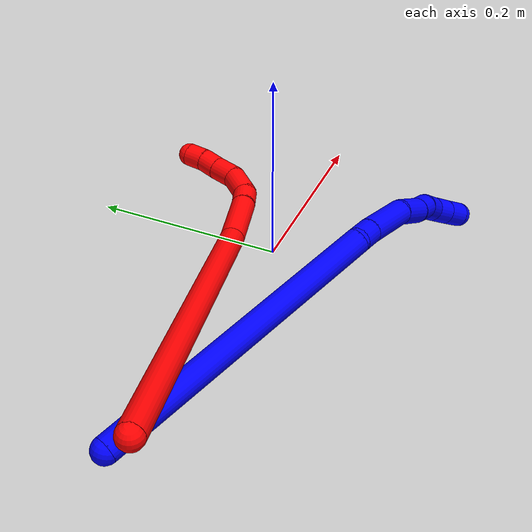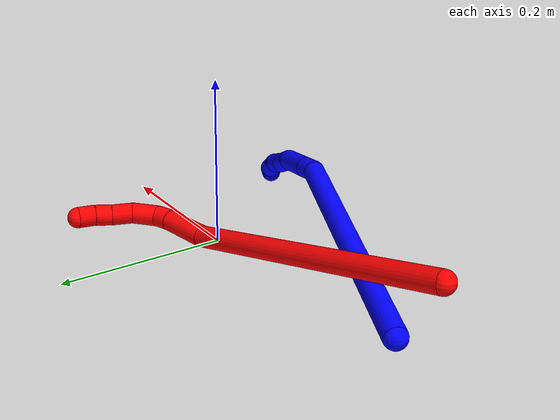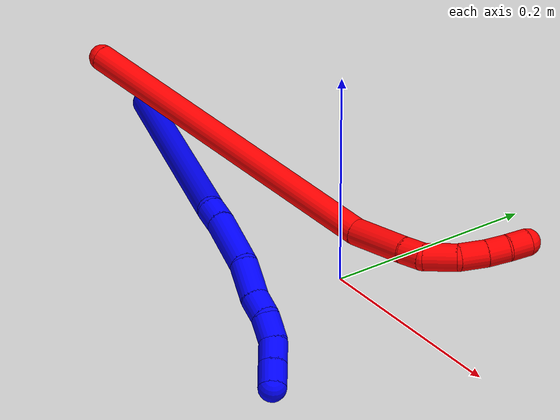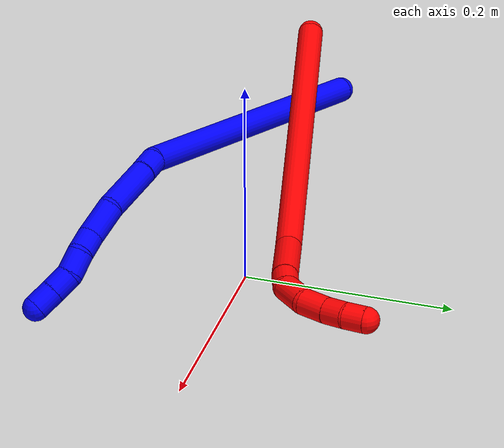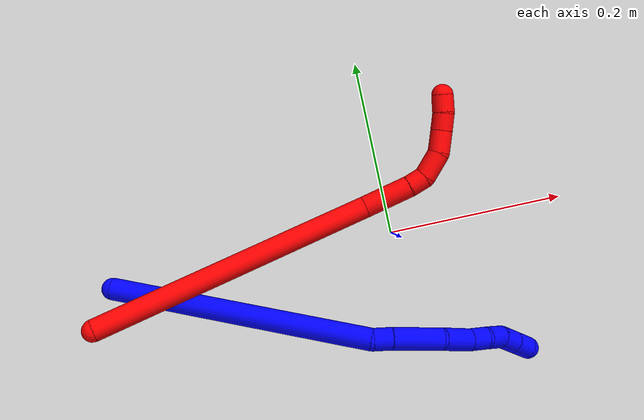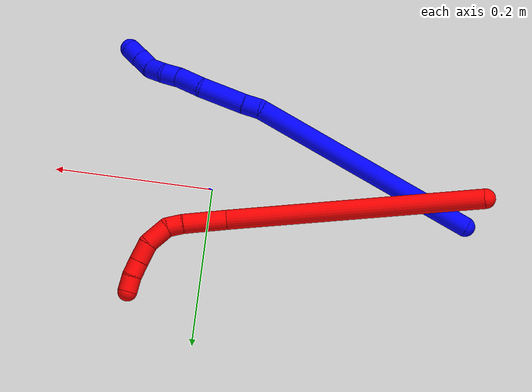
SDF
<sdf version="1.7">
 <world name="default">
  <plugin name="TubeGeneratorPlugin" filename="libtube_generator_plugin.so"/>
  <model name="photoneo_s_sensor">
   <static>1</static>
   <pose>0 0 2 1.57079 1.57079 3.14159</pose>
   <link name="link">
    <inertial><mass>0.1</mass></inertial>
    <sensor name="sensor" type="depth">
     <update_rate>30</update_rate>
     <camera>
      <horizontal_fov>1.22</horizontal_fov>
      <image><width>1920</width><height>1200</height><format>B8G8R8</format></image>
      <clip><near>0.1</near><far>4</far></clip>
      <depth_camera><output>points</output></depth_camera>
     </camera>
     <plugin name="camera_plugin" filename="libgazebo_ros_depth_camera.so">
      <baseline>0.2</baseline>
      <alwaysOn>1</alwaysOn>
      <updateRate>0.0</updateRate>
      <cameraName>camera_ir</cameraName>
      <imageTopicName>/camera/color/image_raw</imageTopicName>
      <cameraInfoTopicName>/camera/color/camera_info</cameraInfoTopicName>
      <depthImageTopicName>/camera/depth/image_raw</depthImageTopicName>
      <depthImageCameraInfoTopicName>/camera/depth/camera_info</depthImageCameraInfoTopicName>
      <pointCloudTopicName>/camera/depth/points</pointCloudTopicName>
      <frameName>fr_optical</frameName>
      <pointCloudCutoff>0.1</pointCloudCutoff>
      <pointCloudCutoffMax>2.0</pointCloudCutoffMax>
      <distortionK1>0</distortionK1>
      <distortionK2>0</distortionK2>
      <distortionK3>0</distortionK3>
      <distortionT1>0</distortionT1>
      <distortionT2>0</distortionT2>
      <CxPrime>0</CxPrime>
      <Cx>0</Cx>
      <Cy>0</Cy>
      <focalLength>0</focalLength>
      <hackBaseline>0</hackBaseline>
     </plugin>
    </sensor>
   </link>
  </model>
  <gravity>0 0 -9.8</gravity>
  <magnetic_field>6e-06 2.3e-05 -4.2e-05</magnetic_field>
  <atmosphere type="adiabatic"/>
  <physics name="default_physics" default="0" type="ode">
   <max_step_size>0.003</max_step_size>
   <real_time_factor>1</real_time_factor>
   <real_time_update_rate>1000</real_time_update_rate>
   <max_contacts>10000</max_contacts>
   <ode>
    <solver>
     <type>quick</type>
     <iters>100</iters>
     <sor>1.3</sor>
     <use_dynamic_moi_rescaling>0</use_dynamic_moi_rescaling>
    </solver>
    <constraints>
     <contact_max_correcting_vel>0</contact_max_correcting_vel>
     <contact_surface_layer>0.001</contact_surface_layer>
     <cfm>0</cfm>
     <erp>0.2</erp>
    </constraints>
   </ode>
  </physics>
  <scene><ambient>0.4 0.4 0.4 1</ambient><background>0.7 0.7 0.7 1</background><shadows>0</shadows></scene>
  <audio><device>default</device></audio>
  <spherical_coordinates>
   <surface_model>EARTH_WGS84</surface_model>
   <latitude_deg>0</latitude_deg>
   <longitude_deg>0</longitude_deg>
   <elevation>0</elevation>
   <heading_deg>0</heading_deg>
  </spherical_coordinates>
  <model name="bin">
   <static>1</static>
   <link name="bottom">
    <collision name="collision-bottom">
     <pose>0 0 -0.01 0 -0 0</pose>
     <geometry><box><size>0.8 0.6 0.02</size></box></geometry>
     <surface>
      <friction><ode><mu>100</mu><mu2>100</mu2></ode></friction>
      <contact><collide_bitmask>65535</collide_bitmask></contact>
     </surface>
    </collision>
   </link>
   <link name="west_wall">
    <collision name="collision-west_wall">
     <pose>-0.41 0 0.1 0 -0 0</pose>
     <geometry><box><size>0.02 0.6 0.2</size></box></geometry>
     <surface>
      <friction><ode><mu>100</mu><mu2>100</mu2></ode></friction>
      <contact><collide_bitmask>65535</collide_bitmask></contact>
     </surface>
    </collision>
   </link>
   <link name="east_wall">
    <collision name="collision-east_wall">
     <pose>0.41 0 0.1 0 -0 0</pose>
     <geometry><box><size>0.02 0.6 0.2</size></box></geometry>
     <surface>
      <friction><ode><mu>100</mu><mu2>100</mu2></ode></friction>
      <contact><collide_bitmask>65535</collide_bitmask></contact>
     </surface>
    </collision>
   </link>
   <link name="south_wall">
    <collision name="collision-south_wall">
     <pose>0 -0.31 0.1 0 -0 0</pose>
     <geometry><box><size>0.8 0.02 0.2</size></box></geometry>
     <surface>
      <friction><ode><mu>100</mu><mu2>100</mu2></ode></friction>
      <contact><collide_bitmask>65535</collide_bitmask></contact>
     </surface>
    </collision>
   </link>
   <link name="north_wall">
    <collision name="collision-north_wall">
     <pose>0 0.31 0.1 0 -0 0</pose>
     <geometry><box><size>0.8 0.02 0.2</size></box></geometry>
     <surface>
      <friction><ode><mu>100</mu><mu2>100</mu2></ode></friction>
      <contact><collide_bitmask>65535</collide_bitmask></contact>
     </surface>
    </collision>
   </link>
  </model>
  <model name="1">
   <static>0</static>
   <link name="1">
    <collision name="collision-cylinder-e_1_1_4">
     <pose>0.121428 -0.050525 0.070552 0.621474 0.950313 0.327476</pose>
     <geometry><cylinder><radius>0.0125</radius><length>0.298496</length></cylinder></geometry>
     <surface>
      <friction><ode><mu>1.16</mu><mu2>1.16</mu2><slip1>0</slip1><slip2>0</slip2></ode></friction>
      <contact><ode><kp>1e+06</kp><kd>1</kd><max_vel>0</max_vel><min_depth>0.001</min_depth></ode></contact>
     </surface>
    </collision>
    <visual name="visual-cylinder-e_1_1_4">
     <pose>0.121428 -0.050525 0.070552 0.621474 0.950313 0.327476</pose>
     <geometry><cylinder><radius>0.0125</radius><length>0.298496</length></cylinder></geometry>
     <material><ambient>0 0 1 1</ambient></material>
    </visual>
    <collision name="collision-cylinder-e_2_4_5">
     <pose>0.253142 -0.102946 0.143069 0.767658 1.31121 0.602312</pose>
     <geometry><cylinder><radius>0.0125</radius><length>0.021285</length></cylinder></geometry>
     <surface>
      <friction><ode><mu>1.16</mu><mu2>1.16</mu2><slip1>0</slip1><slip2>0</slip2></ode></friction>
      <contact><ode><kp>1e+06</kp><kd>1</kd><max_vel>0</max_vel><min_depth>0.001</min_depth></ode></contact>
     </surface>
    </collision>
    <visual name="visual-cylinder-e_2_4_5">
     <pose>0.253142 -0.102946 0.143069 0.767658 1.31121 0.602312</pose>
     <geometry><cylinder><radius>0.0125</radius><length>0.021285</length></cylinder></geometry>
     <material><ambient>0 0 1 1</ambient></material>
    </visual>
    <collision name="collision-cylinder-e_3_5_6">
     <pose>0.290685 -0.111833 0.149304 1.02245 1.27889 0.790456</pose>
     <geometry><cylinder><radius>0.0125</radius><length>0.056922</length></cylinder></geometry>
     <surface>
      <friction><ode><mu>1.16</mu><mu2>1.16</mu2><slip1>0</slip1><slip2>0</slip2></ode></friction>
      <contact><ode><kp>1e+06</kp><kd>1</kd><max_vel>0</max_vel><min_depth>0.001</min_depth></ode></contact>
     </surface>
    </collision>
    <visual name="visual-cylinder-e_3_5_6">
     <pose>0.290685 -0.111833 0.149304 1.02245 1.27889 0.790456</pose>
     <geometry><cylinder><radius>0.0125</radius><length>0.056922</length></cylinder></geometry>
     <material><ambient>0 0 1 1</ambient></material>
    </visual>
    <collision name="collision-cylinder-e_4_6_7">
     <pose>0.334596 -0.124268 0.151391 1.95195 1.2321 1.61615</pose>
     <geometry><cylinder><radius>0.0125</radius><length>0.035314</length></cylinder></geometry>
     <surface>
      <friction><ode><mu>1.16</mu><mu2>1.16</mu2><slip1>0</slip1><slip2>0</slip2></ode></friction>
      <contact><ode><kp>1e+06</kp><kd>1</kd><max_vel>0</max_vel><min_depth>0.001</min_depth></ode></contact>
     </surface>
    </collision>
    <visual name="visual-cylinder-e_4_6_7">
     <pose>0.334596 -0.124268 0.151391 1.95195 1.2321 1.61615</pose>
     <geometry><cylinder><radius>0.0125</radius><length>0.035314</length></cylinder></geometry>
     <material><ambient>0 0 1 1</ambient></material>
    </visual>
    <collision name="collision-cylinder-e_5_7_8">
     <pose>0.36162 -0.131468 0.149034 1.66985 1.40244 1.50091</pose>
     <geometry><cylinder><radius>0.0125</radius><length>0.021038</length></cylinder></geometry>
     <surface>
      <friction><ode><mu>1.16</mu><mu2>1.16</mu2><slip1>0</slip1><slip2>0</slip2></ode></friction>
      <contact><ode><kp>1e+06</kp><kd>1</kd><max_vel>0</max_vel><min_depth>0.001</min_depth></ode></contact>
     </surface>
    </collision>
    <visual name="visual-cylinder-e_5_7_8">
     <pose>0.36162 -0.131468 0.149034 1.66985 1.40244 1.50091</pose>
     <geometry><cylinder><radius>0.0125</radius><length>0.021038</length></cylinder></geometry>
     <material><ambient>0 0 1 1</ambient></material>
    </visual>
    <collision name="collision-cylinder-e_6_8_9">
     <pose>0.382699 -0.136096 0.145359 2.45422 1.17067 2.1514</pose>
     <geometry><cylinder><radius>0.0125</radius><length>0.023255</length></cylinder></geometry>
     <surface>
      <friction><ode><mu>1.16</mu><mu2>1.16</mu2><slip1>0</slip1><slip2>0</slip2></ode></friction>
      <contact><ode><kp>1e+06</kp><kd>1</kd><max_vel>0</max_vel><min_depth>0.001</min_depth></ode></contact>
     </surface>
    </collision>
    <visual name="visual-cylinder-e_6_8_9">
     <pose>0.382699 -0.136096 0.145359 2.45422 1.17067 2.1514</pose>
     <geometry><cylinder><radius>0.0125</radius><length>0.023255</length></cylinder></geometry>
     <material><ambient>0 0 1 1</ambient></material>
    </visual>
    <collision name="collision-cylinder-e_7_9_10">
     <pose>0.402108 -0.144999 0.139675 1.91822 0.935586 1.24835</pose>
     <geometry><cylinder><radius>0.0125</radius><length>0.021616</length></cylinder></geometry>
     <surface>
      <friction><ode><mu>1.16</mu><mu2>1.16</mu2><slip1>0</slip1><slip2>0</slip2></ode></friction>
      <contact><ode><kp>1e+06</kp><kd>1</kd><max_vel>0</max_vel><min_depth>0.001</min_depth></ode></contact>
     </surface>
    </collision>
    <visual name="visual-cylinder-e_7_9_10">
     <pose>0.402108 -0.144999 0.139675 1.91822 0.935586 1.24835</pose>
     <geometry><cylinder><radius>0.0125</radius><length>0.021616</length></cylinder></geometry>
     <material><ambient>0 0 1 1</ambient></material>
    </visual>
    <collision name="collision-cylinder-e_8_10_2">
     <pose>0.419723 -0.157199 0.13543 1.89329 0.940406 1.22905</pose>
     <geometry><cylinder><radius>0.0125</radius><length>0.022074</length></cylinder></geometry>
     <surface>
      <friction><ode><mu>1.16</mu><mu2>1.16</mu2><slip1>0</slip1><slip2>0</slip2></ode></friction>
      <contact><ode><kp>1e+06</kp><kd>1</kd><max_vel>0</max_vel><min_depth>0.001</min_depth></ode></contact>
     </surface>
    </collision>
    <visual name="visual-cylinder-e_8_10_2">
     <pose>0.419723 -0.157199 0.13543 1.89329 0.940406 1.22905</pose>
     <geometry><cylinder><radius>0.0125</radius><length>0.022074</length></cylinder></geometry>
     <material><ambient>0 0 1 1</ambient></material>
    </visual>
    <collision name="collision-sphere-2">
     <pose>0.428639 -0.16337 0.133368 0 -0 0</pose>
     <geometry><sphere><radius>0.0125</radius></sphere></geometry>
     <surface>
      <friction><ode><mu>1.16</mu><mu2>1.16</mu2><slip1>0</slip1><slip2>0</slip2></ode></friction>
      <contact><ode><kp>1e+06</kp><kd>1</kd><max_vel>0</max_vel><min_depth>0.001</min_depth></ode></contact>
     </surface>
    </collision>
    <visual name="visual-sphere-2">
     <pose>0.428639 -0.16337 0.133368 0 -0 0</pose>
     <geometry><sphere><radius>0.0125</radius></sphere></geometry>
     <material><ambient>0 0 1 1</ambient></material>
    </visual>
    <collision name="collision-sphere-10">
     <pose>0.410808 -0.151029 0.137492 0 -0 0</pose>
     <geometry><sphere><radius>0.0125</radius></sphere></geometry>
     <surface>
      <friction><ode><mu>1.16</mu><mu2>1.16</mu2><slip1>0</slip1><slip2>0</slip2></ode></friction>
      <contact><ode><kp>1e+06</kp><kd>1</kd><max_vel>0</max_vel><min_depth>0.001</min_depth></ode></contact>
     </surface>
    </collision>
    <visual name="visual-sphere-10">
     <pose>0.410808 -0.151029 0.137492 0 -0 0</pose>
     <geometry><sphere><radius>0.0125</radius></sphere></geometry>
     <material><ambient>0 0 1 1</ambient></material>
    </visual>
    <collision name="collision-sphere-9">
     <pose>0.393408 -0.13897 0.141858 0 -0 0</pose>
     <geometry><sphere><radius>0.0125</radius></sphere></geometry>
     <surface>
      <friction><ode><mu>1.16</mu><mu2>1.16</mu2><slip1>0</slip1><slip2>0</slip2></ode></friction>
      <contact><ode><kp>1e+06</kp><kd>1</kd><max_vel>0</max_vel><min_depth>0.001</min_depth></ode></contact>
     </surface>
    </collision>
    <visual name="visual-sphere-9">
     <pose>0.393408 -0.13897 0.141858 0 -0 0</pose>
     <geometry><sphere><radius>0.0125</radius></sphere></geometry>
     <material><ambient>0 0 1 1</ambient></material>
    </visual>
    <collision name="collision-sphere-4">
     <pose>0.242856 -0.101049 0.141103 0 -0 0</pose>
     <geometry><sphere><radius>0.0125</radius></sphere></geometry>
     <surface>
      <friction><ode><mu>1.16</mu><mu2>1.16</mu2><slip1>0</slip1><slip2>0</slip2></ode></friction>
      <contact><ode><kp>1e+06</kp><kd>1</kd><max_vel>0</max_vel><min_depth>0.001</min_depth></ode></contact>
     </surface>
    </collision>
    <visual name="visual-sphere-4">
     <pose>0.242856 -0.101049 0.141103 0 -0 0</pose>
     <geometry><sphere><radius>0.0125</radius></sphere></geometry>
     <material><ambient>0 0 1 1</ambient></material>
    </visual>
    <collision name="collision-sphere-1">
     <geometry><sphere><radius>0.0125</radius></sphere></geometry>
     <surface>
      <friction><ode><mu>1.16</mu><mu2>1.16</mu2><slip1>0</slip1><slip2>0</slip2></ode></friction>
      <contact><ode><kp>1e+06</kp><kd>1</kd><max_vel>0</max_vel><min_depth>0.001</min_depth></ode></contact>
     </surface>
    </collision>
    <visual name="visual-sphere-1">
     <geometry><sphere><radius>0.0125</radius></sphere></geometry>
     <material><ambient>0 0 1 1</ambient></material>
    </visual>
    <collision name="collision-sphere-8">
     <pose>0.37199 -0.133222 0.14886 0 -0 0</pose>
     <geometry><sphere><radius>0.0125</radius></sphere></geometry>
     <surface>
      <friction><ode><mu>1.16</mu><mu2>1.16</mu2><slip1>0</slip1><slip2>0</slip2></ode></friction>
      <contact><ode><kp>1e+06</kp><kd>1</kd><max_vel>0</max_vel><min_depth>0.001</min_depth></ode></contact>
     </surface>
    </collision>
    <visual name="visual-sphere-8">
     <pose>0.37199 -0.133222 0.14886 0 -0 0</pose>
     <geometry><sphere><radius>0.0125</radius></sphere></geometry>
     <material><ambient>0 0 1 1</ambient></material>
    </visual>
    <collision name="collision-sphere-5">
     <pose>0.263427 -0.104843 0.145034 0 -0 0</pose>
     <geometry><sphere><radius>0.0125</radius></sphere></geometry>
     <surface>
      <friction><ode><mu>1.16</mu><mu2>1.16</mu2><slip1>0</slip1><slip2>0</slip2></ode></friction>
      <contact><ode><kp>1e+06</kp><kd>1</kd><max_vel>0</max_vel><min_depth>0.001</min_depth></ode></contact>
     </surface>
    </collision>
    <visual name="visual-sphere-5">
     <pose>0.263427 -0.104843 0.145034 0 -0 0</pose>
     <geometry><sphere><radius>0.0125</radius></sphere></geometry>
     <material><ambient>0 0 1 1</ambient></material>
    </visual>
    <collision name="collision-sphere-6">
     <pose>0.317942 -0.118823 0.153573 0 -0 0</pose>
     <geometry><sphere><radius>0.0125</radius></sphere></geometry>
     <surface>
      <friction><ode><mu>1.16</mu><mu2>1.16</mu2><slip1>0</slip1><slip2>0</slip2></ode></friction>
      <contact><ode><kp>1e+06</kp><kd>1</kd><max_vel>0</max_vel><min_depth>0.001</min_depth></ode></contact>
     </surface>
    </collision>
    <visual name="visual-sphere-6">
     <pose>0.317942 -0.118823 0.153573 0 -0 0</pose>
     <geometry><sphere><radius>0.0125</radius></sphere></geometry>
     <material><ambient>0 0 1 1</ambient></material>
    </visual>
    <collision name="collision-sphere-7">
     <pose>0.35125 -0.129714 0.149209 0 -0 0</pose>
     <geometry><sphere><radius>0.0125</radius></sphere></geometry>
     <surface>
      <friction><ode><mu>1.16</mu><mu2>1.16</mu2><slip1>0</slip1><slip2>0</slip2></ode></friction>
      <contact><ode><kp>1e+06</kp><kd>1</kd><max_vel>0</max_vel><min_depth>0.001</min_depth></ode></contact>
     </surface>
    </collision>
    <visual name="visual-sphere-7">
     <pose>0.35125 -0.129714 0.149209 0 -0 0</pose>
     <geometry><sphere><radius>0.0125</radius></sphere></geometry>
     <material><ambient>0 0 1 1</ambient></material>
    </visual>
    <inertial>
     <pose>0.208921 -0.081124 0.100948 0 -0 0</pose>
     <mass>0.5</mass>
     <inertia>
      <ixx>0.001689</ixx>
      <ixy>0</ixy>
      <ixz>0</ixz>
      <iyy>0.002495</iyy>
      <iyz>0</iyz>
      <izz>-0.001069</izz>
     </inertia>
    </inertial>
   </link>
   <pose>-0.320824 0.004824 0.037984 0.114679 0.318578 0.021736</pose>
  </model>
  <model name="2">
   <static>0</static>
   <link name="2">
    <collision name="collision-cylinder-e_1_1_4">
     <pose>0.154471 0.03265 -0.041765 -2.47808 1.2402 -2.2426</pose>
     <geometry><cylinder><radius>0.0125</radius><length>0.326629</length></cylinder></geometry>
     <surface>
      <friction><ode><mu>1.16</mu><mu2>1.16</mu2><slip1>0</slip1><slip2>0</slip2></ode></friction>
      <contact><ode><kp>1e+06</kp><kd>1</kd><max_vel>0</max_vel><min_depth>0.001</min_depth></ode></contact>
     </surface>
    </collision>
    <visual name="visual-cylinder-e_1_1_4">
     <pose>0.154471 0.03265 -0.041765 -2.47808 1.2402 -2.2426</pose>
     <geometry><cylinder><radius>0.0125</radius><length>0.326629</length></cylinder></geometry>
     <material><ambient>1 0 0 1</ambient></material>
    </visual>
    <collision name="collision-cylinder-e_2_4_5">
     <pose>0.33617 0.071695 -0.083968 -1.63908 1.33956 -1.40656</pose>
     <geometry><cylinder><radius>0.0125</radius><length>0.055945</length></cylinder></geometry>
     <surface>
      <friction><ode><mu>1.16</mu><mu2>1.16</mu2><slip1>0</slip1><slip2>0</slip2></ode></friction>
      <contact><ode><kp>1e+06</kp><kd>1</kd><max_vel>0</max_vel><min_depth>0.001</min_depth></ode></contact>
     </surface>
    </collision>
    <visual name="visual-cylinder-e_2_4_5">
     <pose>0.33617 0.071695 -0.083968 -1.63908 1.33956 -1.40656</pose>
     <geometry><cylinder><radius>0.0125</radius><length>0.055945</length></cylinder></geometry>
     <material><ambient>1 0 0 1</ambient></material>
    </visual>
    <collision name="collision-cylinder-e_3_5_6">
     <pose>0.372843 0.081488 -0.08505 -1.75825 1.21986 -1.4018</pose>
     <geometry><cylinder><radius>0.0125</radius><length>0.020117</length></cylinder></geometry>
     <surface>
      <friction><ode><mu>1.16</mu><mu2>1.16</mu2><slip1>0</slip1><slip2>0</slip2></ode></friction>
      <contact><ode><kp>1e+06</kp><kd>1</kd><max_vel>0</max_vel><min_depth>0.001</min_depth></ode></contact>
     </surface>
    </collision>
    <visual name="visual-cylinder-e_3_5_6">
     <pose>0.372843 0.081488 -0.08505 -1.75825 1.21986 -1.4018</pose>
     <geometry><cylinder><radius>0.0125</radius><length>0.020117</length></cylinder></geometry>
     <material><ambient>1 0 0 1</ambient></material>
    </visual>
    <collision name="collision-cylinder-e_4_6_7">
     <pose>0.392701 0.09638 -0.086084 -1.60472 0.73579 -0.758851</pose>
     <geometry><cylinder><radius>0.0125</radius><length>0.031028</length></cylinder></geometry>
     <surface>
      <friction><ode><mu>1.16</mu><mu2>1.16</mu2><slip1>0</slip1><slip2>0</slip2></ode></friction>
      <contact><ode><kp>1e+06</kp><kd>1</kd><max_vel>0</max_vel><min_depth>0.001</min_depth></ode></contact>
     </surface>
    </collision>
    <visual name="visual-cylinder-e_4_6_7">
     <pose>0.392701 0.09638 -0.086084 -1.60472 0.73579 -0.758851</pose>
     <geometry><cylinder><radius>0.0125</radius><length>0.031028</length></cylinder></geometry>
     <material><ambient>1 0 0 1</ambient></material>
    </visual>
    <collision name="collision-cylinder-e_5_7_8">
     <pose>0.407329 0.120051 -0.087361 -1.6435 0.332389 -0.356968</pose>
     <geometry><cylinder><radius>0.0125</radius><length>0.025833</length></cylinder></geometry>
     <surface>
      <friction><ode><mu>1.16</mu><mu2>1.16</mu2><slip1>0</slip1><slip2>0</slip2></ode></friction>
      <contact><ode><kp>1e+06</kp><kd>1</kd><max_vel>0</max_vel><min_depth>0.001</min_depth></ode></contact>
     </surface>
    </collision>
    <visual name="visual-cylinder-e_5_7_8">
     <pose>0.407329 0.120051 -0.087361 -1.6435 0.332389 -0.356968</pose>
     <geometry><cylinder><radius>0.0125</radius><length>0.025833</length></cylinder></geometry>
     <material><ambient>1 0 0 1</ambient></material>
    </visual>
    <collision name="collision-cylinder-e_6_8_9">
     <pose>0.414656 0.141854 -0.08794 -1.53878 0.312621 -0.302919</pose>
     <geometry><cylinder><radius>0.0125</radius><length>0.020242</length></cylinder></geometry>
     <surface>
      <friction><ode><mu>1.16</mu><mu2>1.16</mu2><slip1>0</slip1><slip2>0</slip2></ode></friction>
      <contact><ode><kp>1e+06</kp><kd>1</kd><max_vel>0</max_vel><min_depth>0.001</min_depth></ode></contact>
     </surface>
    </collision>
    <visual name="visual-cylinder-e_6_8_9">
     <pose>0.414656 0.141854 -0.08794 -1.53878 0.312621 -0.302919</pose>
     <geometry><cylinder><radius>0.0125</radius><length>0.020242</length></cylinder></geometry>
     <material><ambient>1 0 0 1</ambient></material>
    </visual>
    <collision name="collision-cylinder-e_7_9_2">
     <pose>0.419197 0.161476 -0.087949 -1.6025 0.141817 -0.14637</pose>
     <geometry><cylinder><radius>0.0125</radius><length>0.020206</length></cylinder></geometry>
     <surface>
      <friction><ode><mu>1.16</mu><mu2>1.16</mu2><slip1>0</slip1><slip2>0</slip2></ode></friction>
      <contact><ode><kp>1e+06</kp><kd>1</kd><max_vel>0</max_vel><min_depth>0.001</min_depth></ode></contact>
     </surface>
    </collision>
    <visual name="visual-cylinder-e_7_9_2">
     <pose>0.419197 0.161476 -0.087949 -1.6025 0.141817 -0.14637</pose>
     <geometry><cylinder><radius>0.0125</radius><length>0.020206</length></cylinder></geometry>
     <material><ambient>1 0 0 1</ambient></material>
    </visual>
    <collision name="collision-sphere-2">
     <pose>0.420625 0.171472 -0.088266 0 -0 0</pose>
     <geometry><sphere><radius>0.0125</radius></sphere></geometry>
     <surface>
      <friction><ode><mu>1.16</mu><mu2>1.16</mu2><slip1>0</slip1><slip2>0</slip2></ode></friction>
      <contact><ode><kp>1e+06</kp><kd>1</kd><max_vel>0</max_vel><min_depth>0.001</min_depth></ode></contact>
     </surface>
    </collision>
    <visual name="visual-sphere-2">
     <pose>0.420625 0.171472 -0.088266 0 -0 0</pose>
     <geometry><sphere><radius>0.0125</radius></sphere></geometry>
     <material><ambient>1 0 0 1</ambient></material>
    </visual>
    <collision name="collision-sphere-9">
     <pose>0.417769 0.15148 -0.087631 0 -0 0</pose>
     <geometry><sphere><radius>0.0125</radius></sphere></geometry>
     <surface>
      <friction><ode><mu>1.16</mu><mu2>1.16</mu2><slip1>0</slip1><slip2>0</slip2></ode></friction>
      <contact><ode><kp>1e+06</kp><kd>1</kd><max_vel>0</max_vel><min_depth>0.001</min_depth></ode></contact>
     </surface>
    </collision>
    <visual name="visual-sphere-9">
     <pose>0.417769 0.15148 -0.087631 0 -0 0</pose>
     <geometry><sphere><radius>0.0125</radius></sphere></geometry>
     <material><ambient>1 0 0 1</ambient></material>
    </visual>
    <collision name="collision-sphere-4">
     <pose>0.308942 0.065299 -0.08353 0 -0 0</pose>
     <geometry><sphere><radius>0.0125</radius></sphere></geometry>
     <surface>
      <friction><ode><mu>1.16</mu><mu2>1.16</mu2><slip1>0</slip1><slip2>0</slip2></ode></friction>
      <contact><ode><kp>1e+06</kp><kd>1</kd><max_vel>0</max_vel><min_depth>0.001</min_depth></ode></contact>
     </surface>
    </collision>
    <visual name="visual-sphere-4">
     <pose>0.308942 0.065299 -0.08353 0 -0 0</pose>
     <geometry><sphere><radius>0.0125</radius></sphere></geometry>
     <material><ambient>1 0 0 1</ambient></material>
    </visual>
    <collision name="collision-sphere-1">
     <geometry><sphere><radius>0.0125</radius></sphere></geometry>
     <surface>
      <friction><ode><mu>1.16</mu><mu2>1.16</mu2><slip1>0</slip1><slip2>0</slip2></ode></friction>
      <contact><ode><kp>1e+06</kp><kd>1</kd><max_vel>0</max_vel><min_depth>0.001</min_depth></ode></contact>
     </surface>
    </collision>
    <visual name="visual-sphere-1">
     <geometry><sphere><radius>0.0125</radius></sphere></geometry>
     <material><ambient>1 0 0 1</ambient></material>
    </visual>
    <collision name="collision-sphere-8">
     <pose>0.411543 0.132228 -0.088248 0 -0 0</pose>
     <geometry><sphere><radius>0.0125</radius></sphere></geometry>
     <surface>
      <friction><ode><mu>1.16</mu><mu2>1.16</mu2><slip1>0</slip1><slip2>0</slip2></ode></friction>
      <contact><ode><kp>1e+06</kp><kd>1</kd><max_vel>0</max_vel><min_depth>0.001</min_depth></ode></contact>
     </surface>
    </collision>
    <visual name="visual-sphere-8">
     <pose>0.411543 0.132228 -0.088248 0 -0 0</pose>
     <geometry><sphere><radius>0.0125</radius></sphere></geometry>
     <material><ambient>1 0 0 1</ambient></material>
    </visual>
    <collision name="collision-sphere-5">
     <pose>0.363398 0.078091 -0.084405 0 -0 0</pose>
     <geometry><sphere><radius>0.0125</radius></sphere></geometry>
     <surface>
      <friction><ode><mu>1.16</mu><mu2>1.16</mu2><slip1>0</slip1><slip2>0</slip2></ode></friction>
      <contact><ode><kp>1e+06</kp><kd>1</kd><max_vel>0</max_vel><min_depth>0.001</min_depth></ode></contact>
     </surface>
    </collision>
    <visual name="visual-sphere-5">
     <pose>0.363398 0.078091 -0.084405 0 -0 0</pose>
     <geometry><sphere><radius>0.0125</radius></sphere></geometry>
     <material><ambient>1 0 0 1</ambient></material>
    </visual>
    <collision name="collision-sphere-6">
     <pose>0.382289 0.084886 -0.085694 0 -0 0</pose>
     <geometry><sphere><radius>0.0125</radius></sphere></geometry>
     <surface>
      <friction><ode><mu>1.16</mu><mu2>1.16</mu2><slip1>0</slip1><slip2>0</slip2></ode></friction>
      <contact><ode><kp>1e+06</kp><kd>1</kd><max_vel>0</max_vel><min_depth>0.001</min_depth></ode></contact>
     </surface>
    </collision>
    <visual name="visual-sphere-6">
     <pose>0.382289 0.084886 -0.085694 0 -0 0</pose>
     <geometry><sphere><radius>0.0125</radius></sphere></geometry>
     <material><ambient>1 0 0 1</ambient></material>
    </visual>
    <collision name="collision-sphere-7">
     <pose>0.403114 0.107873 -0.086474 0 -0 0</pose>
     <geometry><sphere><radius>0.0125</radius></sphere></geometry>
     <surface>
      <friction><ode><mu>1.16</mu><mu2>1.16</mu2><slip1>0</slip1><slip2>0</slip2></ode></friction>
      <contact><ode><kp>1e+06</kp><kd>1</kd><max_vel>0</max_vel><min_depth>0.001</min_depth></ode></contact>
     </surface>
    </collision>
    <visual name="visual-sphere-7">
     <pose>0.403114 0.107873 -0.086474 0 -0 0</pose>
     <geometry><sphere><radius>0.0125</radius></sphere></geometry>
     <material><ambient>1 0 0 1</ambient></material>
    </visual>
    <inertial>
     <pose>0.232666 0.057081 -0.05707 0 -0 0</pose>
     <mass>0.5</mass>
     <inertia>
      <ixx>-0.001297</ixx>
      <ixy>0</ixy>
      <ixz>0</ixz>
      <iyy>0.002044</iyy>
      <iyz>0</iyz>
      <izz>-0.003383</izz>
     </inertia>
    </inertial>
   </link>
   <pose>-0.336762 -0.032665 0.090611 0.056488 -0.046532 -0.006918</pose>
  </model>
 </world>
</sdf>
